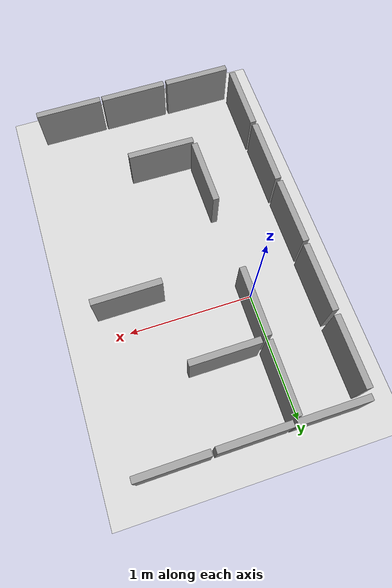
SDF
<sdf version="1.6">
 <world name="default">
  <model name="ground_plane">
   <static>1</static>
   <link name="link">
    <collision name="collision">
     <geometry><plane><normal>0 0 1</normal><size>100 100</size></plane></geometry>
     <surface>
      <contact><collide_bitmask>65535</collide_bitmask></contact>
      <friction><ode><mu>100</mu><mu2>50</mu2></ode></friction>
     </surface>
    </collision>
    <visual name="visual">
     <cast_shadows>0</cast_shadows>
     <geometry><plane><normal>0 0 1</normal><size>100 100</size></plane></geometry>
     <material>
      <script><uri>file://media/materials/scripts/gazebo.material</uri><name>Gazebo/Grey</name></script>
     </material>
    </visual>
   </link>
  </model>
  <model name="Maze_unit_clone_5_clone_0">
   <link name="link">
    <inertial>
     <mass>1</mass>
     <inertia>
      <ixx>0.166667</ixx>
      <ixy>0</ixy>
      <ixz>0</ixz>
      <iyy>0.166667</iyy>
      <iyz>0</iyz>
      <izz>0.166667</izz>
     </inertia>
    </inertial>
    <pose>-0.463146 -0.530916 0 0 -0 0</pose>
    <visual name="visual">
     <geometry><box><size>0.05 0.55 0.4</size></box></geometry>
     <material>
      <script><name>Gazebo/Grey</name><uri>file://media/materials/scripts/gazebo.material</uri></script>
      <shader type="vertex"><normal_map>__default__</normal_map></shader>
      <ambient>0.933 0.933 0.925 1</ambient>
      <diffuse>0.7 0.7 0.7 1</diffuse>
      <specular>0.01 0.01 0.01 1</specular>
      <emissive>0 0 0 1</emissive>
     </material>
    </visual>
    <collision name="collision">
     <geometry><box><size>0.05 0.55 0.4</size></box></geometry>
     <surface>
      <friction>
       <ode><mu>1</mu><mu2>1</mu2><fdir1>0 0 0</fdir1><slip1>0</slip1><slip2>0</slip2></ode>
       <torsional>
        <coefficient>1</coefficient>
        <patch_radius>0</patch_radius>
        <surface_radius>0</surface_radius>
        <use_patch_radius>1</use_patch_radius>
        <ode><slip>0</slip></ode>
       </torsional>
      </friction>
      <bounce><restitution_coefficient>0</restitution_coefficient><threshold>1e+06</threshold></bounce>
      <contact>
       <collide_without_contact>0</collide_without_contact>
       <collide_without_contact_bitmask>1</collide_without_contact_bitmask>
       <collide_bitmask>1</collide_bitmask>
       <ode>
        <soft_cfm>0</soft_cfm>
        <soft_erp>0.2</soft_erp>
        <kp>1e+13</kp>
        <kd>1</kd>
        <max_vel>0.01</max_vel>
        <min_depth>0</min_depth>
       </ode>
       <bullet>
        <split_impulse>1</split_impulse>
        <split_impulse_penetration_threshold>-0.01</split_impulse_penetration_threshold>
        <soft_cfm>0</soft_cfm>
        <soft_erp>0.2</soft_erp>
        <kp>1e+13</kp>
        <kd>1</kd>
       </bullet>
      </contact>
     </surface>
    </collision>
   </link>
   <static>1</static>
   <pose>0.43774 -1.48772 0.200002 -0 -5e-06 1.57668</pose>
  </model>
  <model name="Maze_unit_clone_5_clone">
   <link name="link">
    <inertial>
     <mass>1</mass>
     <inertia>
      <ixx>0.166667</ixx>
      <ixy>0</ixy>
      <ixz>0</ixz>
      <iyy>0.166667</iyy>
      <iyz>0</iyz>
      <izz>0.166667</izz>
     </inertia>
    </inertial>
    <pose>-0.463146 -0.530916 0 0 -0 0</pose>
    <visual name="visual">
     <geometry><box><size>0.05 0.55 0.4</size></box></geometry>
     <material>
      <script><name>Gazebo/Grey</name><uri>file://media/materials/scripts/gazebo.material</uri></script>
      <shader type="vertex"><normal_map>__default__</normal_map></shader>
      <ambient>0.933 0.933 0.925 1</ambient>
      <diffuse>0.7 0.7 0.7 1</diffuse>
      <specular>0.01 0.01 0.01 1</specular>
      <emissive>0 0 0 1</emissive>
     </material>
    </visual>
    <collision name="collision">
     <geometry><box><size>0.05 0.55 0.4</size></box></geometry>
     <surface>
      <friction>
       <ode><mu>1</mu><mu2>1</mu2><fdir1>0 0 0</fdir1><slip1>0</slip1><slip2>0</slip2></ode>
       <torsional>
        <coefficient>1</coefficient>
        <patch_radius>0</patch_radius>
        <surface_radius>0</surface_radius>
        <use_patch_radius>1</use_patch_radius>
        <ode><slip>0</slip></ode>
       </torsional>
      </friction>
      <bounce><restitution_coefficient>0</restitution_coefficient><threshold>1e+06</threshold></bounce>
      <contact>
       <collide_without_contact>0</collide_without_contact>
       <collide_without_contact_bitmask>1</collide_without_contact_bitmask>
       <collide_bitmask>1</collide_bitmask>
       <ode>
        <soft_cfm>0</soft_cfm>
        <soft_erp>0.2</soft_erp>
        <kp>1e+13</kp>
        <kd>1</kd>
        <max_vel>0.01</max_vel>
        <min_depth>0</min_depth>
       </ode>
       <bullet>
        <split_impulse>1</split_impulse>
        <split_impulse_penetration_threshold>-0.01</split_impulse_penetration_threshold>
        <soft_cfm>0</soft_cfm>
        <soft_erp>0.2</soft_erp>
        <kp>1e+13</kp>
        <kd>1</kd>
       </bullet>
      </contact>
     </surface>
    </collision>
   </link>
   <static>1</static>
   <pose>-0.130085 -1.48837 0.200001 0 -2e-06 1.5766</pose>
  </model>
  <model name="Maze_unit_clone_5">
   <link name="link">
    <inertial>
     <mass>1</mass>
     <inertia>
      <ixx>0.166667</ixx>
      <ixy>0</ixy>
      <ixz>0</ixz>
      <iyy>0.166667</iyy>
      <iyz>0</iyz>
      <izz>0.166667</izz>
     </inertia>
    </inertial>
    <pose>-0.463146 -0.530916 0 0 -0 0</pose>
    <visual name="visual">
     <geometry><box><size>0.05 0.55 0.4</size></box></geometry>
     <material>
      <script><name>Gazebo/Grey</name><uri>file://media/materials/scripts/gazebo.material</uri></script>
      <shader type="vertex"><normal_map>__default__</normal_map></shader>
      <ambient>0.933 0.933 0.925 1</ambient>
      <diffuse>0.7 0.7 0.7 1</diffuse>
      <specular>0.01 0.01 0.01 1</specular>
      <emissive>0 0 0 1</emissive>
     </material>
    </visual>
    <collision name="collision">
     <geometry><box><size>0.05 0.55 0.4</size></box></geometry>
     <surface>
      <friction>
       <ode><mu>1</mu><mu2>1</mu2><fdir1>0 0 0</fdir1><slip1>0</slip1><slip2>0</slip2></ode>
       <torsional>
        <coefficient>1</coefficient>
        <patch_radius>0</patch_radius>
        <surface_radius>0</surface_radius>
        <use_patch_radius>1</use_patch_radius>
        <ode><slip>0</slip></ode>
       </torsional>
      </friction>
      <bounce><restitution_coefficient>0</restitution_coefficient><threshold>1e+06</threshold></bounce>
      <contact>
       <collide_without_contact>0</collide_without_contact>
       <collide_without_contact_bitmask>1</collide_without_contact_bitmask>
       <collide_bitmask>1</collide_bitmask>
       <ode>
        <soft_cfm>0</soft_cfm>
        <soft_erp>0.2</soft_erp>
        <kp>1e+13</kp>
        <kd>1</kd>
        <max_vel>0.01</max_vel>
        <min_depth>0</min_depth>
       </ode>
       <bullet>
        <split_impulse>1</split_impulse>
        <split_impulse_penetration_threshold>-0.01</split_impulse_penetration_threshold>
        <soft_cfm>0</soft_cfm>
        <soft_erp>0.2</soft_erp>
        <kp>1e+13</kp>
        <kd>1</kd>
       </bullet>
      </contact>
     </surface>
    </collision>
   </link>
   <static>1</static>
   <pose>-0.704211 -1.48861 0.200001 0 -2e-06 1.5766</pose>
  </model>
  <model name="Maze_unit">
   <link name="link">
    <inertial>
     <mass>1</mass>
     <inertia>
      <ixx>0.166667</ixx>
      <ixy>0</ixy>
      <ixz>0</ixz>
      <iyy>0.166667</iyy>
      <iyz>0</iyz>
      <izz>0.166667</izz>
     </inertia>
    </inertial>
    <pose>-0.463146 -0.530916 0 0 -0 0</pose>
    <visual name="visual">
     <geometry><box><size>0.05 0.55 0.4</size></box></geometry>
     <material>
      <script><name>Gazebo/Grey</name><uri>file://media/materials/scripts/gazebo.material</uri></script>
      <shader type="vertex"><normal_map>__default__</normal_map></shader>
      <ambient>0.933 0.933 0.925 1</ambient>
      <diffuse>0.7 0.7 0.7 1</diffuse>
      <specular>0.01 0.01 0.01 1</specular>
      <emissive>0 0 0 1</emissive>
     </material>
    </visual>
    <collision name="collision">
     <geometry><box><size>0.05 0.55 0.4</size></box></geometry>
     <surface>
      <friction>
       <ode><mu>1</mu><mu2>1</mu2><fdir1>0 0 0</fdir1><slip1>0</slip1><slip2>0</slip2></ode>
       <torsional>
        <coefficient>1</coefficient>
        <patch_radius>0</patch_radius>
        <surface_radius>0</surface_radius>
        <use_patch_radius>1</use_patch_radius>
        <ode><slip>0</slip></ode>
       </torsional>
      </friction>
      <bounce><restitution_coefficient>0</restitution_coefficient><threshold>1e+06</threshold></bounce>
      <contact>
       <collide_without_contact>0</collide_without_contact>
       <collide_without_contact_bitmask>1</collide_without_contact_bitmask>
       <collide_bitmask>1</collide_bitmask>
       <ode>
        <soft_cfm>0</soft_cfm>
        <soft_erp>0.2</soft_erp>
        <kp>1e+13</kp>
        <kd>1</kd>
        <max_vel>0.01</max_vel>
        <min_depth>0</min_depth>
       </ode>
       <bullet>
        <split_impulse>1</split_impulse>
        <split_impulse_penetration_threshold>-0.01</split_impulse_penetration_threshold>
        <soft_cfm>0</soft_cfm>
        <soft_erp>0.2</soft_erp>
        <kp>1e+13</kp>
        <kd>1</kd>
       </bullet>
      </contact>
     </surface>
    </collision>
   </link>
   <static>1</static>
   <pose>-0.00693 -1.07743 0.199993 -9e-06 -0 -0.010706</pose>
  </model>
  <model name="Maze_unit_0">
   <link name="link">
    <inertial>
     <mass>1</mass>
     <inertia>
      <ixx>0.166667</ixx>
      <ixy>0</ixy>
      <ixz>0</ixz>
      <iyy>0.166667</iyy>
      <iyz>0</iyz>
      <izz>0.166667</izz>
     </inertia>
    </inertial>
    <pose>-0.463146 -0.530916 0 0 -0 0</pose>
    <visual name="visual">
     <geometry><box><size>0.05 0.55 0.4</size></box></geometry>
     <material>
      <script><name>Gazebo/Grey</name><uri>file://media/materials/scripts/gazebo.material</uri></script>
      <shader type="vertex"><normal_map>__default__</normal_map></shader>
      <ambient>0.933 0.933 0.925 1</ambient>
      <diffuse>0.7 0.7 0.7 1</diffuse>
      <specular>0.01 0.01 0.01 1</specular>
      <emissive>0 0 0 1</emissive>
     </material>
    </visual>
    <collision name="collision">
     <geometry><box><size>0.05 0.55 0.4</size></box></geometry>
     <surface>
      <friction>
       <ode><mu>1</mu><mu2>1</mu2><fdir1>0 0 0</fdir1><slip1>0</slip1><slip2>0</slip2></ode>
       <torsional>
        <coefficient>1</coefficient>
        <patch_radius>0</patch_radius>
        <surface_radius>0</surface_radius>
        <use_patch_radius>1</use_patch_radius>
        <ode><slip>0</slip></ode>
       </torsional>
      </friction>
      <bounce><restitution_coefficient>0</restitution_coefficient><threshold>1e+06</threshold></bounce>
      <contact>
       <collide_without_contact>0</collide_without_contact>
       <collide_without_contact_bitmask>1</collide_without_contact_bitmask>
       <collide_bitmask>1</collide_bitmask>
       <ode>
        <soft_cfm>0</soft_cfm>
        <soft_erp>0.2</soft_erp>
        <kp>1e+13</kp>
        <kd>1</kd>
        <max_vel>0.01</max_vel>
        <min_depth>0</min_depth>
       </ode>
       <bullet>
        <split_impulse>1</split_impulse>
        <split_impulse_penetration_threshold>-0.01</split_impulse_penetration_threshold>
        <soft_cfm>0</soft_cfm>
        <soft_erp>0.2</soft_erp>
        <kp>1e+13</kp>
        <kd>1</kd>
       </bullet>
      </contact>
     </surface>
    </collision>
   </link>
   <static>1</static>
   <pose>-0.005538 -0.503001 0.2 0 0 -0.010815</pose>
  </model>
  <model name="Maze_unit_clone">
   <link name="link">
    <inertial>
     <mass>1</mass>
     <inertia>
      <ixx>0.166667</ixx>
      <ixy>0</ixy>
      <ixz>0</ixz>
      <iyy>0.166667</iyy>
      <iyz>0</iyz>
      <izz>0.166667</izz>
     </inertia>
    </inertial>
    <pose>-0.463146 -0.530916 0 0 -0 0</pose>
    <visual name="visual">
     <geometry><box><size>0.05 0.55 0.4</size></box></geometry>
     <material>
      <script><name>Gazebo/Grey</name><uri>file://media/materials/scripts/gazebo.material</uri></script>
      <shader type="vertex"><normal_map>__default__</normal_map></shader>
      <ambient>0.933 0.933 0.925 1</ambient>
      <diffuse>0.7 0.7 0.7 1</diffuse>
      <specular>0.01 0.01 0.01 1</specular>
      <emissive>0 0 0 1</emissive>
     </material>
    </visual>
    <collision name="collision">
     <geometry><box><size>0.05 0.55 0.4</size></box></geometry>
     <surface>
      <friction>
       <ode><mu>1</mu><mu2>1</mu2><fdir1>0 0 0</fdir1><slip1>0</slip1><slip2>0</slip2></ode>
       <torsional>
        <coefficient>1</coefficient>
        <patch_radius>0</patch_radius>
        <surface_radius>0</surface_radius>
        <use_patch_radius>1</use_patch_radius>
        <ode><slip>0</slip></ode>
       </torsional>
      </friction>
      <bounce><restitution_coefficient>0</restitution_coefficient><threshold>1e+06</threshold></bounce>
      <contact>
       <collide_without_contact>0</collide_without_contact>
       <collide_without_contact_bitmask>1</collide_without_contact_bitmask>
       <collide_bitmask>1</collide_bitmask>
       <ode>
        <soft_cfm>0</soft_cfm>
        <soft_erp>0.2</soft_erp>
        <kp>1e+13</kp>
        <kd>1</kd>
        <max_vel>0.01</max_vel>
        <min_depth>0</min_depth>
       </ode>
       <bullet>
        <split_impulse>1</split_impulse>
        <split_impulse_penetration_threshold>-0.01</split_impulse_penetration_threshold>
        <soft_cfm>0</soft_cfm>
        <soft_erp>0.2</soft_erp>
        <kp>1e+13</kp>
        <kd>1</kd>
       </bullet>
      </contact>
     </surface>
    </collision>
   </link>
   <static>1</static>
   <pose>-0.009371 0.076833 0.2 0 0 -0.000526</pose>
  </model>
  <model name="Maze_unit_clone_0">
   <link name="link">
    <inertial>
     <mass>1</mass>
     <inertia>
      <ixx>0.166667</ixx>
      <ixy>0</ixy>
      <ixz>0</ixz>
      <iyy>0.166667</iyy>
      <iyz>0</iyz>
      <izz>0.166667</izz>
     </inertia>
    </inertial>
    <pose>-0.463146 -0.530916 -0 0 -0 0</pose>
    <visual name="visual">
     <geometry><box><size>0.05 0.55 0.4</size></box></geometry>
     <material>
      <script><name>Gazebo/Grey</name><uri>file://media/materials/scripts/gazebo.material</uri></script>
      <shader type="vertex"><normal_map>__default__</normal_map></shader>
      <ambient>0.933 0.933 0.925 1</ambient>
      <diffuse>0.7 0.7 0.7 1</diffuse>
      <specular>0.01 0.01 0.01 1</specular>
      <emissive>0 0 0 1</emissive>
     </material>
    </visual>
    <collision name="collision">
     <geometry><box><size>0.05 0.55 0.4</size></box></geometry>
     <surface>
      <friction>
       <ode><mu>1</mu><mu2>1</mu2><fdir1>0 0 0</fdir1><slip1>0</slip1><slip2>0</slip2></ode>
       <torsional>
        <coefficient>1</coefficient>
        <patch_radius>0</patch_radius>
        <surface_radius>0</surface_radius>
        <use_patch_radius>1</use_patch_radius>
        <ode><slip>0</slip></ode>
       </torsional>
      </friction>
      <bounce><restitution_coefficient>0</restitution_coefficient><threshold>1e+06</threshold></bounce>
      <contact>
       <collide_without_contact>0</collide_without_contact>
       <collide_without_contact_bitmask>1</collide_without_contact_bitmask>
       <collide_bitmask>1</collide_bitmask>
       <ode>
        <soft_cfm>0</soft_cfm>
        <soft_erp>0.2</soft_erp>
        <kp>1e+13</kp>
        <kd>1</kd>
        <max_vel>0.01</max_vel>
        <min_depth>0</min_depth>
       </ode>
       <bullet>
        <split_impulse>1</split_impulse>
        <split_impulse_penetration_threshold>-0.01</split_impulse_penetration_threshold>
        <soft_cfm>0</soft_cfm>
        <soft_erp>0.2</soft_erp>
        <kp>1e+13</kp>
        <kd>1</kd>
       </bullet>
      </contact>
     </surface>
    </collision>
   </link>
   <static>1</static>
   <pose>-0.000294 0.653567 0.2 1e-06 1e-06 -0.00027</pose>
  </model>
  <model name="Maze_unit_clone_1">
   <link name="link">
    <inertial>
     <mass>1</mass>
     <inertia>
      <ixx>0.166667</ixx>
      <ixy>0</ixy>
      <ixz>0</ixz>
      <iyy>0.166667</iyy>
      <iyz>0</iyz>
      <izz>0.166667</izz>
     </inertia>
    </inertial>
    <pose>-0.463146 -0.530916 0 0 -0 0</pose>
    <visual name="visual">
     <geometry><box><size>0.05 0.55 0.4</size></box></geometry>
     <material>
      <script><name>Gazebo/Grey</name><uri>file://media/materials/scripts/gazebo.material</uri></script>
      <shader type="vertex"><normal_map>__default__</normal_map></shader>
      <ambient>0.933 0.933 0.925 1</ambient>
      <diffuse>0.7 0.7 0.7 1</diffuse>
      <specular>0.01 0.01 0.01 1</specular>
      <emissive>0 0 0 1</emissive>
     </material>
    </visual>
    <collision name="collision">
     <geometry><box><size>0.05 0.55 0.4</size></box></geometry>
     <surface>
      <friction>
       <ode><mu>1</mu><mu2>1</mu2><fdir1>0 0 0</fdir1><slip1>0</slip1><slip2>0</slip2></ode>
       <torsional>
        <coefficient>1</coefficient>
        <patch_radius>0</patch_radius>
        <surface_radius>0</surface_radius>
        <use_patch_radius>1</use_patch_radius>
        <ode><slip>0</slip></ode>
       </torsional>
      </friction>
      <bounce><restitution_coefficient>0</restitution_coefficient><threshold>1e+06</threshold></bounce>
      <contact>
       <collide_without_contact>0</collide_without_contact>
       <collide_without_contact_bitmask>1</collide_without_contact_bitmask>
       <collide_bitmask>1</collide_bitmask>
       <ode>
        <soft_cfm>0</soft_cfm>
        <soft_erp>0.2</soft_erp>
        <kp>1e+13</kp>
        <kd>1</kd>
        <max_vel>0.01</max_vel>
        <min_depth>0</min_depth>
       </ode>
       <bullet>
        <split_impulse>1</split_impulse>
        <split_impulse_penetration_threshold>-0.01</split_impulse_penetration_threshold>
        <soft_cfm>0</soft_cfm>
        <soft_erp>0.2</soft_erp>
        <kp>1e+13</kp>
        <kd>1</kd>
       </bullet>
      </contact>
     </surface>
    </collision>
   </link>
   <static>1</static>
   <pose>0.003263 1.23583 0.2 0 0 -0.000544</pose>
  </model>
  <model name="Maze_unit_clone_5_clone_3">
   <link name="link">
    <inertial>
     <mass>1</mass>
     <inertia>
      <ixx>0.166667</ixx>
      <ixy>0</ixy>
      <ixz>0</ixz>
      <iyy>0.166667</iyy>
      <iyz>0</iyz>
      <izz>0.166667</izz>
     </inertia>
    </inertial>
    <pose>-0.463146 -0.530916 -0 0 -0 0</pose>
    <visual name="visual">
     <geometry><box><size>0.05 0.55 0.4</size></box></geometry>
     <material>
      <script><name>Gazebo/Grey</name><uri>file://media/materials/scripts/gazebo.material</uri></script>
      <shader type="vertex"><normal_map>__default__</normal_map></shader>
      <ambient>0.933 0.933 0.925 1</ambient>
      <diffuse>0.7 0.7 0.7 1</diffuse>
      <specular>0.01 0.01 0.01 1</specular>
      <emissive>0 0 0 1</emissive>
     </material>
    </visual>
    <collision name="collision">
     <geometry><box><size>0.05 0.55 0.4</size></box></geometry>
     <surface>
      <friction>
       <ode><mu>1</mu><mu2>1</mu2><fdir1>0 0 0</fdir1><slip1>0</slip1><slip2>0</slip2></ode>
       <torsional>
        <coefficient>1</coefficient>
        <patch_radius>0</patch_radius>
        <surface_radius>0</surface_radius>
        <use_patch_radius>1</use_patch_radius>
        <ode><slip>0</slip></ode>
       </torsional>
      </friction>
      <bounce><restitution_coefficient>0</restitution_coefficient><threshold>1e+06</threshold></bounce>
      <contact>
       <collide_without_contact>0</collide_without_contact>
       <collide_without_contact_bitmask>1</collide_without_contact_bitmask>
       <collide_bitmask>1</collide_bitmask>
       <ode>
        <soft_cfm>0</soft_cfm>
        <soft_erp>0.2</soft_erp>
        <kp>1e+13</kp>
        <kd>1</kd>
        <max_vel>0.01</max_vel>
        <min_depth>0</min_depth>
       </ode>
       <bullet>
        <split_impulse>1</split_impulse>
        <split_impulse_penetration_threshold>-0.01</split_impulse_penetration_threshold>
        <soft_cfm>0</soft_cfm>
        <soft_erp>0.2</soft_erp>
        <kp>1e+13</kp>
        <kd>1</kd>
       </bullet>
      </contact>
     </surface>
    </collision>
   </link>
   <static>1</static>
   <pose>-0.711146 1.50038 0.2 0 1e-06 1.57111</pose>
  </model>
  <model name="Maze_unit_clone_5_clone_4">
   <link name="link">
    <inertial>
     <mass>1</mass>
     <inertia>
      <ixx>0.166667</ixx>
      <ixy>0</ixy>
      <ixz>0</ixz>
      <iyy>0.166667</iyy>
      <iyz>0</iyz>
      <izz>0.166667</izz>
     </inertia>
    </inertial>
    <pose>-0.463146 -0.530916 0 0 -0 0</pose>
    <visual name="visual">
     <geometry><box><size>0.05 0.55 0.4</size></box></geometry>
     <material>
      <script><name>Gazebo/Grey</name><uri>file://media/materials/scripts/gazebo.material</uri></script>
      <shader type="vertex"><normal_map>__default__</normal_map></shader>
      <ambient>0.933 0.933 0.925 1</ambient>
      <diffuse>0.7 0.7 0.7 1</diffuse>
      <specular>0.01 0.01 0.01 1</specular>
      <emissive>0 0 0 1</emissive>
     </material>
    </visual>
    <collision name="collision">
     <geometry><box><size>0.05 0.55 0.4</size></box></geometry>
     <surface>
      <friction>
       <ode><mu>1</mu><mu2>1</mu2><fdir1>0 0 0</fdir1><slip1>0</slip1><slip2>0</slip2></ode>
       <torsional>
        <coefficient>1</coefficient>
        <patch_radius>0</patch_radius>
        <surface_radius>0</surface_radius>
        <use_patch_radius>1</use_patch_radius>
        <ode><slip>0</slip></ode>
       </torsional>
      </friction>
      <bounce><restitution_coefficient>0</restitution_coefficient><threshold>1e+06</threshold></bounce>
      <contact>
       <collide_without_contact>0</collide_without_contact>
       <collide_without_contact_bitmask>1</collide_without_contact_bitmask>
       <collide_bitmask>1</collide_bitmask>
       <ode>
        <soft_cfm>0</soft_cfm>
        <soft_erp>0.2</soft_erp>
        <kp>1e+13</kp>
        <kd>1</kd>
        <max_vel>0.01</max_vel>
        <min_depth>0</min_depth>
       </ode>
       <bullet>
        <split_impulse>1</split_impulse>
        <split_impulse_penetration_threshold>-0.01</split_impulse_penetration_threshold>
        <soft_cfm>0</soft_cfm>
        <soft_erp>0.2</soft_erp>
        <kp>1e+13</kp>
        <kd>1</kd>
       </bullet>
      </contact>
     </surface>
    </collision>
   </link>
   <static>1</static>
   <pose>-0.1409 1.49743 0.2 0 -0 1.57606</pose>
  </model>
  <model name="Maze_unit_clone_5_clone_5">
   <link name="link">
    <inertial>
     <mass>1</mass>
     <inertia>
      <ixx>0.166667</ixx>
      <ixy>0</ixy>
      <ixz>0</ixz>
      <iyy>0.166667</iyy>
      <iyz>0</iyz>
      <izz>0.166667</izz>
     </inertia>
    </inertial>
    <pose>-0.463146 -0.530916 -0 0 -0 0</pose>
    <visual name="visual">
     <geometry><box><size>0.05 0.55 0.4</size></box></geometry>
     <material>
      <script><name>Gazebo/Grey</name><uri>file://media/materials/scripts/gazebo.material</uri></script>
      <shader type="vertex"><normal_map>__default__</normal_map></shader>
      <ambient>0.933 0.933 0.925 1</ambient>
      <diffuse>0.7 0.7 0.7 1</diffuse>
      <specular>0.01 0.01 0.01 1</specular>
      <emissive>0 0 0 1</emissive>
     </material>
    </visual>
    <collision name="collision">
     <geometry><box><size>0.05 0.55 0.4</size></box></geometry>
     <surface>
      <friction>
       <ode><mu>1</mu><mu2>1</mu2><fdir1>0 0 0</fdir1><slip1>0</slip1><slip2>0</slip2></ode>
       <torsional>
        <coefficient>1</coefficient>
        <patch_radius>0</patch_radius>
        <surface_radius>0</surface_radius>
        <use_patch_radius>1</use_patch_radius>
        <ode><slip>0</slip></ode>
       </torsional>
      </friction>
      <bounce><restitution_coefficient>0</restitution_coefficient><threshold>1e+06</threshold></bounce>
      <contact>
       <collide_without_contact>0</collide_without_contact>
       <collide_without_contact_bitmask>1</collide_without_contact_bitmask>
       <collide_bitmask>1</collide_bitmask>
       <ode>
        <soft_cfm>0</soft_cfm>
        <soft_erp>0.2</soft_erp>
        <kp>1e+13</kp>
        <kd>1</kd>
        <max_vel>0.01</max_vel>
        <min_depth>0</min_depth>
       </ode>
       <bullet>
        <split_impulse>1</split_impulse>
        <split_impulse_penetration_threshold>-0.01</split_impulse_penetration_threshold>
        <soft_cfm>0</soft_cfm>
        <soft_erp>0.2</soft_erp>
        <kp>1e+13</kp>
        <kd>1</kd>
       </bullet>
      </contact>
     </surface>
    </collision>
   </link>
   <static>1</static>
   <pose>0.43926 1.5028 0.200003 9e-06 -0 1.57639</pose>
  </model>
  <model name="Maze_unit_clone_4">
   <link name="link">
    <inertial>
     <mass>1</mass>
     <inertia>
      <ixx>0.166667</ixx>
      <ixy>0</ixy>
      <ixz>0</ixz>
      <iyy>0.166667</iyy>
      <iyz>0</iyz>
      <izz>0.166667</izz>
     </inertia>
    </inertial>
    <pose>-0.463146 -0.530916 0 0 -0 0</pose>
    <visual name="visual">
     <geometry><box><size>0.05 0.55 0.4</size></box></geometry>
     <material>
      <script><name>Gazebo/Grey</name><uri>file://media/materials/scripts/gazebo.material</uri></script>
      <shader type="vertex"><normal_map>__default__</normal_map></shader>
      <ambient>0.933 0.933 0.925 1</ambient>
      <diffuse>0.7 0.7 0.7 1</diffuse>
      <specular>0.01 0.01 0.01 1</specular>
      <emissive>0 0 0 1</emissive>
     </material>
    </visual>
    <collision name="collision">
     <geometry><box><size>0.05 0.55 0.4</size></box></geometry>
     <surface>
      <friction>
       <ode><mu>1</mu><mu2>1</mu2><fdir1>0 0 0</fdir1><slip1>0</slip1><slip2>0</slip2></ode>
       <torsional>
        <coefficient>1</coefficient>
        <patch_radius>0</patch_radius>
        <surface_radius>0</surface_radius>
        <use_patch_radius>1</use_patch_radius>
        <ode><slip>0</slip></ode>
       </torsional>
      </friction>
      <bounce><restitution_coefficient>0</restitution_coefficient><threshold>1e+06</threshold></bounce>
      <contact>
       <collide_without_contact>0</collide_without_contact>
       <collide_without_contact_bitmask>1</collide_without_contact_bitmask>
       <collide_bitmask>1</collide_bitmask>
       <ode>
        <soft_cfm>0</soft_cfm>
        <soft_erp>0.2</soft_erp>
        <kp>1e+13</kp>
        <kd>1</kd>
        <max_vel>0.01</max_vel>
        <min_depth>0</min_depth>
       </ode>
       <bullet>
        <split_impulse>1</split_impulse>
        <split_impulse_penetration_threshold>-0.01</split_impulse_penetration_threshold>
        <soft_cfm>0</soft_cfm>
        <soft_erp>0.2</soft_erp>
        <kp>1e+13</kp>
        <kd>1</kd>
       </bullet>
      </contact>
     </surface>
    </collision>
   </link>
   <static>1</static>
   <pose>0.532143 1.26193 0.199992 -9e-06 -0 0.001029</pose>
  </model>
  <model name="Maze_unit_clone_3">
   <link name="link">
    <inertial>
     <mass>1</mass>
     <inertia>
      <ixx>0.166667</ixx>
      <ixy>0</ixy>
      <ixz>0</ixz>
      <iyy>0.166667</iyy>
      <iyz>0</iyz>
      <izz>0.166667</izz>
     </inertia>
    </inertial>
    <pose>-0.463146 -0.530916 0 0 -0 0</pose>
    <visual name="visual">
     <geometry><box><size>0.05 0.55 0.4</size></box></geometry>
     <material>
      <script><name>Gazebo/Grey</name><uri>file://media/materials/scripts/gazebo.material</uri></script>
      <shader type="vertex"><normal_map>__default__</normal_map></shader>
      <ambient>0.933 0.933 0.925 1</ambient>
      <diffuse>0.7 0.7 0.7 1</diffuse>
      <specular>0.01 0.01 0.01 1</specular>
      <emissive>0 0 0 1</emissive>
     </material>
    </visual>
    <collision name="collision">
     <geometry><box><size>0.05 0.55 0.4</size></box></geometry>
     <surface>
      <friction>
       <ode><mu>1</mu><mu2>1</mu2><fdir1>0 0 0</fdir1><slip1>0</slip1><slip2>0</slip2></ode>
       <torsional>
        <coefficient>1</coefficient>
        <patch_radius>0</patch_radius>
        <surface_radius>0</surface_radius>
        <use_patch_radius>1</use_patch_radius>
        <ode><slip>0</slip></ode>
       </torsional>
      </friction>
      <bounce><restitution_coefficient>0</restitution_coefficient><threshold>1e+06</threshold></bounce>
      <contact>
       <collide_without_contact>0</collide_without_contact>
       <collide_without_contact_bitmask>1</collide_without_contact_bitmask>
       <collide_bitmask>1</collide_bitmask>
       <ode>
        <soft_cfm>0</soft_cfm>
        <soft_erp>0.2</soft_erp>
        <kp>1e+13</kp>
        <kd>1</kd>
        <max_vel>0.01</max_vel>
        <min_depth>0</min_depth>
       </ode>
       <bullet>
        <split_impulse>1</split_impulse>
        <split_impulse_penetration_threshold>-0.01</split_impulse_penetration_threshold>
        <soft_cfm>0</soft_cfm>
        <soft_erp>0.2</soft_erp>
        <kp>1e+13</kp>
        <kd>1</kd>
       </bullet>
      </contact>
     </surface>
    </collision>
   </link>
   <static>1</static>
   <pose>0.525254 0.682623 0.2 0 -0 0.000106</pose>
  </model>
  <model name="Maze_unit_clone_5_clone_8">
   <link name="link">
    <inertial>
     <mass>1</mass>
     <inertia>
      <ixx>0.166667</ixx>
      <ixy>0</ixy>
      <ixz>0</ixz>
      <iyy>0.166667</iyy>
      <iyz>0</iyz>
      <izz>0.166667</izz>
     </inertia>
    </inertial>
    <pose>-0.463146 -0.530916 -0 0 -0 0</pose>
    <visual name="visual">
     <geometry><box><size>0.05 0.55 0.4</size></box></geometry>
     <material>
      <script><name>Gazebo/Grey</name><uri>file://media/materials/scripts/gazebo.material</uri></script>
      <shader type="vertex"><normal_map>__default__</normal_map></shader>
      <ambient>0.933 0.933 0.925 1</ambient>
      <diffuse>0.7 0.7 0.7 1</diffuse>
      <specular>0.01 0.01 0.01 1</specular>
      <emissive>0 0 0 1</emissive>
     </material>
    </visual>
    <collision name="collision">
     <geometry><box><size>0.05 0.55 0.4</size></box></geometry>
     <surface>
      <friction>
       <ode><mu>1</mu><mu2>1</mu2><fdir1>0 0 0</fdir1><slip1>0</slip1><slip2>0</slip2></ode>
       <torsional>
        <coefficient>1</coefficient>
        <patch_radius>0</patch_radius>
        <surface_radius>0</surface_radius>
        <use_patch_radius>1</use_patch_radius>
        <ode><slip>0</slip></ode>
       </torsional>
      </friction>
      <bounce><restitution_coefficient>0</restitution_coefficient><threshold>1e+06</threshold></bounce>
      <contact>
       <collide_without_contact>0</collide_without_contact>
       <collide_without_contact_bitmask>1</collide_without_contact_bitmask>
       <collide_bitmask>1</collide_bitmask>
       <ode>
        <soft_cfm>0</soft_cfm>
        <soft_erp>0.2</soft_erp>
        <kp>1e+13</kp>
        <kd>1</kd>
        <max_vel>0.01</max_vel>
        <min_depth>0</min_depth>
       </ode>
       <bullet>
        <split_impulse>1</split_impulse>
        <split_impulse_penetration_threshold>-0.01</split_impulse_penetration_threshold>
        <soft_cfm>0</soft_cfm>
        <soft_erp>0.2</soft_erp>
        <kp>1e+13</kp>
        <kd>1</kd>
       </bullet>
      </contact>
     </surface>
    </collision>
   </link>
   <static>1</static>
   <pose>-0.140357 0.899218 0.2 1e-06 1e-06 1.57661</pose>
  </model>
  <model name="Maze_unit_clone_2">
   <link name="link">
    <inertial>
     <mass>1</mass>
     <inertia>
      <ixx>0.166667</ixx>
      <ixy>0</ixy>
      <ixz>0</ixz>
      <iyy>0.166667</iyy>
      <iyz>0</iyz>
      <izz>0.166667</izz>
     </inertia>
    </inertial>
    <pose>-0.463146 -0.530916 0 0 -0 0</pose>
    <visual name="visual">
     <geometry><box><size>0.05 0.55 0.4</size></box></geometry>
     <material>
      <script><name>Gazebo/Grey</name><uri>file://media/materials/scripts/gazebo.material</uri></script>
      <shader type="vertex"><normal_map>__default__</normal_map></shader>
      <ambient>0.933 0.933 0.925 1</ambient>
      <diffuse>0.7 0.7 0.7 1</diffuse>
      <specular>0.01 0.01 0.01 1</specular>
      <emissive>0 0 0 1</emissive>
     </material>
    </visual>
    <collision name="collision">
     <geometry><box><size>0.05 0.55 0.4</size></box></geometry>
     <surface>
      <friction>
       <ode><mu>1</mu><mu2>1</mu2><fdir1>0 0 0</fdir1><slip1>0</slip1><slip2>0</slip2></ode>
       <torsional>
        <coefficient>1</coefficient>
        <patch_radius>0</patch_radius>
        <surface_radius>0</surface_radius>
        <use_patch_radius>1</use_patch_radius>
        <ode><slip>0</slip></ode>
       </torsional>
      </friction>
      <bounce><restitution_coefficient>0</restitution_coefficient><threshold>1e+06</threshold></bounce>
      <contact>
       <collide_without_contact>0</collide_without_contact>
       <collide_without_contact_bitmask>1</collide_without_contact_bitmask>
       <collide_bitmask>1</collide_bitmask>
       <ode>
        <soft_cfm>0</soft_cfm>
        <soft_erp>0.2</soft_erp>
        <kp>1e+13</kp>
        <kd>1</kd>
        <max_vel>0.01</max_vel>
        <min_depth>0</min_depth>
       </ode>
       <bullet>
        <split_impulse>1</split_impulse>
        <split_impulse_penetration_threshold>-0.01</split_impulse_penetration_threshold>
        <soft_cfm>0</soft_cfm>
        <soft_erp>0.2</soft_erp>
        <kp>1e+13</kp>
        <kd>1</kd>
       </bullet>
      </contact>
     </surface>
    </collision>
   </link>
   <static>1</static>
   <pose>0.523927 -0.465414 0.2 0 -0 0.006084</pose>
  </model>
  <model name="Maze_unit_clone_5_clone_9">
   <link name="link">
    <inertial>
     <mass>1</mass>
     <inertia>
      <ixx>0.166667</ixx>
      <ixy>0</ixy>
      <ixz>0</ixz>
      <iyy>0.166667</iyy>
      <iyz>0</iyz>
      <izz>0.166667</izz>
     </inertia>
    </inertial>
    <pose>-0.463146 -0.530916 -0 0 -0 0</pose>
    <visual name="visual">
     <geometry><box><size>0.05 0.55 0.4</size></box></geometry>
     <material>
      <script><name>Gazebo/Grey</name><uri>file://media/materials/scripts/gazebo.material</uri></script>
      <shader type="vertex"><normal_map>__default__</normal_map></shader>
      <ambient>0.933 0.933 0.925 1</ambient>
      <diffuse>0.7 0.7 0.7 1</diffuse>
      <specular>0.01 0.01 0.01 1</specular>
      <emissive>0 0 0 1</emissive>
     </material>
    </visual>
    <collision name="collision">
     <geometry><box><size>0.05 0.55 0.4</size></box></geometry>
     <surface>
      <friction>
       <ode><mu>1</mu><mu2>1</mu2><fdir1>0 0 0</fdir1><slip1>0</slip1><slip2>0</slip2></ode>
       <torsional>
        <coefficient>1</coefficient>
        <patch_radius>0</patch_radius>
        <surface_radius>0</surface_radius>
        <use_patch_radius>1</use_patch_radius>
        <ode><slip>0</slip></ode>
       </torsional>
      </friction>
      <bounce><restitution_coefficient>0</restitution_coefficient><threshold>1e+06</threshold></bounce>
      <contact>
       <collide_without_contact>0</collide_without_contact>
       <collide_without_contact_bitmask>1</collide_without_contact_bitmask>
       <collide_bitmask>1</collide_bitmask>
       <ode>
        <soft_cfm>0</soft_cfm>
        <soft_erp>0.2</soft_erp>
        <kp>1e+13</kp>
        <kd>1</kd>
        <max_vel>0.01</max_vel>
        <min_depth>0</min_depth>
       </ode>
       <bullet>
        <split_impulse>1</split_impulse>
        <split_impulse_penetration_threshold>-0.01</split_impulse_penetration_threshold>
        <soft_cfm>0</soft_cfm>
        <soft_erp>0.2</soft_erp>
        <kp>1e+13</kp>
        <kd>1</kd>
       </bullet>
      </contact>
     </surface>
    </collision>
   </link>
   <static>1</static>
   <pose>-0.187047 -0.8494 0.199998 0 4e-06 1.55995</pose>
  </model>
  <model name="Maze_unit_clone_5_clone_10">
   <link name="link">
    <inertial>
     <mass>1</mass>
     <inertia>
      <ixx>0.166667</ixx>
      <ixy>0</ixy>
      <ixz>0</ixz>
      <iyy>0.166667</iyy>
      <iyz>0</iyz>
      <izz>0.166667</izz>
     </inertia>
    </inertial>
    <pose>-0.463146 -0.530916 0 0 -0 0</pose>
    <visual name="visual">
     <geometry><box><size>0.05 0.55 0.4</size></box></geometry>
     <material>
      <script><name>Gazebo/Grey</name><uri>file://media/materials/scripts/gazebo.material</uri></script>
      <shader type="vertex"><normal_map>__default__</normal_map></shader>
      <ambient>0.933 0.933 0.925 1</ambient>
      <diffuse>0.7 0.7 0.7 1</diffuse>
      <specular>0.01 0.01 0.01 1</specular>
      <emissive>0 0 0 1</emissive>
     </material>
    </visual>
    <collision name="collision">
     <geometry><box><size>0.05 0.55 0.4</size></box></geometry>
     <surface>
      <friction>
       <ode><mu>1</mu><mu2>1</mu2><fdir1>0 0 0</fdir1><slip1>0</slip1><slip2>0</slip2></ode>
       <torsional>
        <coefficient>1</coefficient>
        <patch_radius>0</patch_radius>
        <surface_radius>0</surface_radius>
        <use_patch_radius>1</use_patch_radius>
        <ode><slip>0</slip></ode>
       </torsional>
      </friction>
      <bounce><restitution_coefficient>0</restitution_coefficient><threshold>1e+06</threshold></bounce>
      <contact>
       <collide_without_contact>0</collide_without_contact>
       <collide_without_contact_bitmask>1</collide_without_contact_bitmask>
       <collide_bitmask>1</collide_bitmask>
       <ode>
        <soft_cfm>0</soft_cfm>
        <soft_erp>0.2</soft_erp>
        <kp>1e+13</kp>
        <kd>1</kd>
        <max_vel>0.01</max_vel>
        <min_depth>0</min_depth>
       </ode>
       <bullet>
        <split_impulse>1</split_impulse>
        <split_impulse_penetration_threshold>-0.01</split_impulse_penetration_threshold>
        <soft_cfm>0</soft_cfm>
        <soft_erp>0.2</soft_erp>
        <kp>1e+13</kp>
        <kd>1</kd>
       </bullet>
      </contact>
     </surface>
    </collision>
   </link>
   <static>1</static>
   <pose>0.405692 0.261565 0.200001 0 -2e-06 1.5765</pose>
  </model>
 </world>
</sdf>
